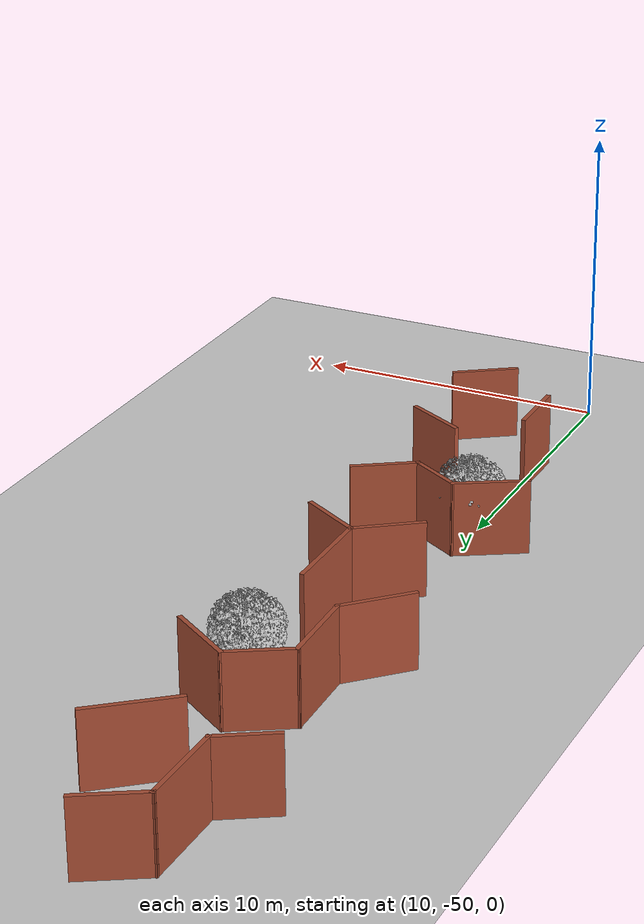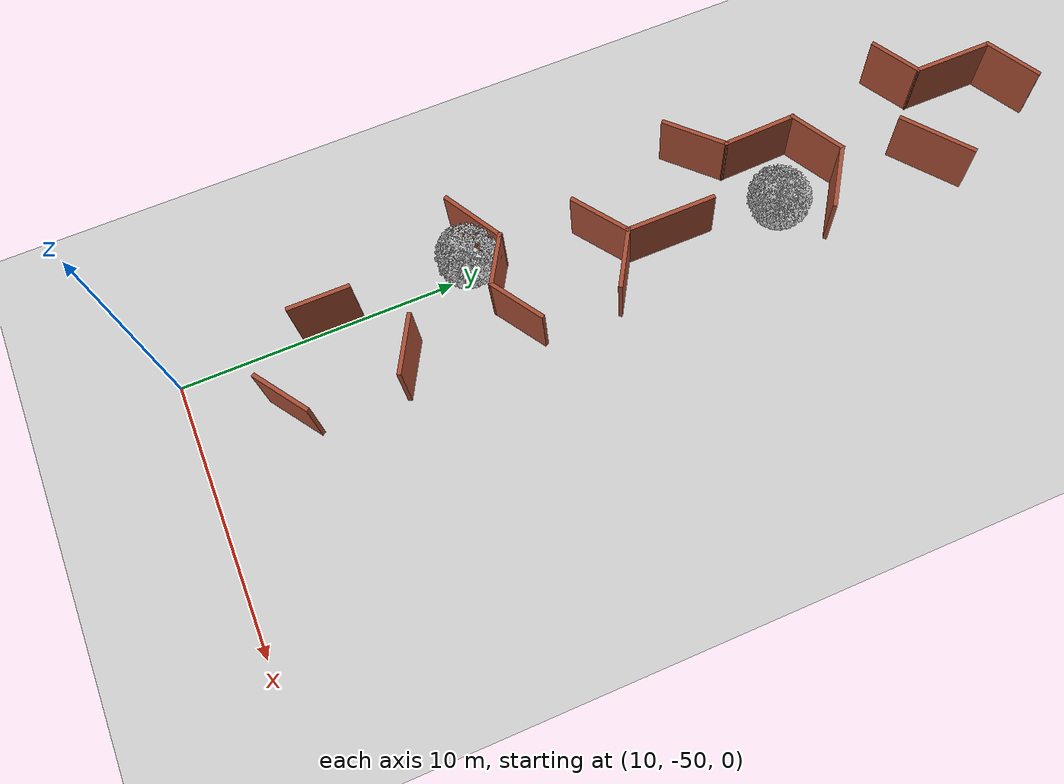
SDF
<sdf version="1.6">
 <world name="default">
  <model name="maze_rect_3">
   <pose>4e-06 -9.9e-05 0 0 -0 1.57001</pose>
   <link name="Wall_461">
    <collision name="Wall_461_Collision">
     <geometry><box><size>2.25 0.15 2.5</size></box></geometry>
     <pose>0 0 1.25 0 -0 0</pose>
    </collision>
    <visual name="Wall_461_Visual">
     <pose>0 0 1.25 0 -0 0</pose>
     <geometry><box><size>2.25 0.15 2.5</size></box></geometry>
     <material>
      <script><uri>file://media/materials/scripts/gazebo.material</uri><name>Gazebo/Bricks</name></script>
      <ambient>1 1 1 1</ambient>
     </material>
     <meta><layer>0</layer></meta>
    </visual>
    <pose>-18.4081 -10.714 0 0 -0 2.0944</pose>
   </link>
   <link name="Wall_462">
    <collision name="Wall_462_Collision">
     <geometry><box><size>3 0.15 2.5</size></box></geometry>
     <pose>0 0 1.25 0 -0 0</pose>
    </collision>
    <visual name="Wall_462_Visual">
     <pose>0 0 1.25 0 -0 0</pose>
     <geometry><box><size>3 0.15 2.5</size></box></geometry>
     <material>
      <script><uri>file://media/materials/scripts/gazebo.material</uri><name>Gazebo/Bricks</name></script>
      <ambient>1 1 1 1</ambient>
     </material>
     <meta><layer>0</layer></meta>
    </visual>
    <pose>-20.3581 -9.80467 0 0 -0 3.14159</pose>
   </link>
   <link name="Wall_463">
    <collision name="Wall_463_Collision">
     <geometry><box><size>2.01531 0.15 2.5</size></box></geometry>
     <pose>0 0 1.25 0 -0 0</pose>
    </collision>
    <visual name="Wall_463_Visual">
     <pose>0 0 1.25 0 -0 0</pose>
     <geometry><box><size>2.01531 0.15 2.5</size></box></geometry>
     <material>
      <script><uri>file://media/materials/scripts/gazebo.material</uri><name>Gazebo/Bricks</name></script>
      <ambient>1 1 1 1</ambient>
     </material>
     <meta><layer>0</layer></meta>
    </visual>
    <pose>-22.2607 -9.0036 0 0 -0 2.10844</pose>
   </link>
   <link name="Wall_529">
    <collision name="Wall_529_Collision">
     <geometry><box><size>2.94143 0.15 2.5</size></box></geometry>
     <pose>0 0 1.25 0 -0 0</pose>
    </collision>
    <visual name="Wall_529_Visual">
     <pose>0 0 1.25 0 -0 0</pose>
     <geometry><box><size>2.94143 0.15 2.5</size></box></geometry>
     <material>
      <script><uri>file://media/materials/scripts/gazebo.material</uri><name>Gazebo/Bricks</name></script>
      <ambient>1 1 1 1</ambient>
     </material>
     <meta><layer>0</layer></meta>
    </visual>
    <pose>-22.3992 -12.4329 0 0 -0 -0.889562</pose>
   </link>
   <link name="Wall_532">
    <collision name="Wall_532_Collision">
     <geometry><box><size>2.43112 0.15 2.5</size></box></geometry>
     <pose>0 0 1.25 0 -0 0</pose>
    </collision>
    <visual name="Wall_532_Visual">
     <pose>0 0 1.25 0 -0 0</pose>
     <geometry><box><size>2.43112 0.15 2.5</size></box></geometry>
     <material>
      <script><uri>file://media/materials/scripts/gazebo.material</uri><name>Gazebo/Bricks</name></script>
      <ambient>1 1 1 1</ambient>
     </material>
     <meta><layer>0</layer></meta>
    </visual>
    <pose>-26.359 -12.5621 0 0 -0 0.998734</pose>
   </link>
   <link name="Wall_533">
    <collision name="Wall_533_Collision">
     <geometry><box><size>2.25 0.15 2.5</size></box></geometry>
     <pose>0 0 1.25 0 -0 0</pose>
    </collision>
    <visual name="Wall_533_Visual">
     <pose>0 0 1.25 0 -0 0</pose>
     <geometry><box><size>2.25 0.15 2.5</size></box></geometry>
     <material>
      <script><uri>file://media/materials/scripts/gazebo.material</uri><name>Gazebo/Bricks</name></script>
      <ambient>1 1 1 1</ambient>
     </material>
     <meta><layer>0</layer></meta>
    </visual>
    <pose>-26.2666 -10.6938 0 0 -0 2.0944</pose>
   </link>
   <link name="Wall_544">
    <collision name="Wall_544_Collision">
     <geometry><box><size>2.5 0.15 2.5</size></box></geometry>
     <pose>0 0 1.25 0 -0 0</pose>
    </collision>
    <visual name="Wall_544_Visual">
     <pose>0 0 1.25 0 -0 0</pose>
     <geometry><box><size>2.5 0.15 2.5</size></box></geometry>
     <material>
      <script><uri>file://media/materials/scripts/gazebo.material</uri><name>Gazebo/Bricks</name></script>
      <ambient>1 1 1 1</ambient>
     </material>
     <meta><layer>0</layer></meta>
    </visual>
    <pose>-30.2444 -9.033 0 0 -0 -0.785398</pose>
   </link>
   <link name="Wall_545">
    <collision name="Wall_545_Collision">
     <geometry><box><size>2.77322 0.15 2.5</size></box></geometry>
     <pose>0 0 1.25 0 -0 0</pose>
    </collision>
    <visual name="Wall_545_Visual">
     <pose>0 0 1.25 0 -0 0</pose>
     <geometry><box><size>2.77322 0.15 2.5</size></box></geometry>
     <material>
      <script><uri>file://media/materials/scripts/gazebo.material</uri><name>Gazebo/Bricks</name></script>
      <ambient>1 1 1 1</ambient>
     </material>
     <meta><layer>0</layer></meta>
    </visual>
    <pose>-28.1026 -9.82414 0 0 -0 0.030278</pose>
   </link>
   <link name="Wall_551">
    <collision name="Wall_551_Collision">
     <geometry><box><size>2.38551 0.15 2.5</size></box></geometry>
     <pose>0 0 1.25 0 -0 0</pose>
    </collision>
    <visual name="Wall_551_Visual">
     <pose>0 0 1.25 0 -0 0</pose>
     <geometry><box><size>2.38551 0.15 2.5</size></box></geometry>
     <material>
      <script><uri>file://media/materials/scripts/gazebo.material</uri><name>Gazebo/Bricks</name></script>
      <ambient>1 1 1 1</ambient>
     </material>
     <meta><layer>0</layer></meta>
    </visual>
    <pose>-34.5618 -10.7081 0 0 -0 -0.950197</pose>
   </link>
   <link name="Wall_552">
    <collision name="Wall_552_Collision">
     <geometry><box><size>2.25 0.15 2.5</size></box></geometry>
     <pose>0 0 1.25 0 -0 0</pose>
    </collision>
    <visual name="Wall_552_Visual">
     <pose>0 0 1.25 0 -0 0</pose>
     <geometry><box><size>2.25 0.15 2.5</size></box></geometry>
     <material>
      <script><uri>file://media/materials/scripts/gazebo.material</uri><name>Gazebo/Bricks</name></script>
      <ambient>1 1 1 1</ambient>
     </material>
     <meta><layer>0</layer></meta>
    </visual>
    <pose>-34.4368 -12.5267 0 0 -0 -2.0944</pose>
   </link>
   <link name="Wall_557">
    <collision name="Wall_557_Collision">
     <geometry><box><size>3.33697 0.15 2.5</size></box></geometry>
     <pose>0 0 1.25 0 -0 0</pose>
    </collision>
    <visual name="Wall_557_Visual">
     <pose>0 0 1.25 0 -0 0</pose>
     <geometry><box><size>3.33697 0.15 2.5</size></box></geometry>
     <material>
      <script><uri>file://media/materials/scripts/gazebo.material</uri><name>Gazebo/Bricks</name></script>
      <ambient>1 1 1 1</ambient>
     </material>
     <meta><layer>0</layer></meta>
    </visual>
    <pose>-32.3183 -11.6124 0 0 -0 -3.13847</pose>
   </link>
   <link name="Wall_560">
    <collision name="Wall_560_Collision">
     <geometry><box><size>2.25 0.15 2.5</size></box></geometry>
     <pose>0 0 1.25 0 -0 0</pose>
    </collision>
    <visual name="Wall_560_Visual">
     <pose>0 0 1.25 0 -0 0</pose>
     <geometry><box><size>2.25 0.15 2.5</size></box></geometry>
     <material>
      <script><uri>file://media/materials/scripts/gazebo.material</uri><name>Gazebo/Bricks</name></script>
      <ambient>1 1 1 1</ambient>
     </material>
     <meta><layer>0</layer></meta>
    </visual>
    <pose>-44.4273 -9.88536 0 0 -0 0</pose>
   </link>
   <link name="Wall_563">
    <collision name="Wall_563_Collision">
     <geometry><box><size>2.5 0.15 2.5</size></box></geometry>
     <pose>0 0 1.25 0 -0 0</pose>
    </collision>
    <visual name="Wall_563_Visual">
     <pose>0 0 1.25 0 -0 0</pose>
     <geometry><box><size>2.5 0.15 2.5</size></box></geometry>
     <material>
      <script><uri>file://media/materials/scripts/gazebo.material</uri><name>Gazebo/Bricks</name></script>
      <ambient>1 1 1 1</ambient>
     </material>
     <meta><layer>0</layer></meta>
    </visual>
    <pose>-38.6014 -9.06446 0 0 -0 -1.0472</pose>
   </link>
   <link name="Wall_564">
    <collision name="Wall_564_Collision">
     <geometry><box><size>2 0.15 2.5</size></box></geometry>
     <pose>0 0 1.25 0 -0 0</pose>
    </collision>
    <visual name="Wall_564_Visual">
     <pose>0 0 1.25 0 -0 0</pose>
     <geometry><box><size>2 0.15 2.5</size></box></geometry>
     <material>
      <script><uri>file://media/materials/scripts/gazebo.material</uri><name>Gazebo/Bricks</name></script>
      <ambient>1 1 1 1</ambient>
     </material>
     <meta><layer>0</layer></meta>
    </visual>
    <pose>-38.4764 -10.8831 0 0 -0 -2.0944</pose>
   </link>
   <link name="Wall_565">
    <collision name="Wall_565_Collision">
     <geometry><box><size>2.23307 0.15 2.5</size></box></geometry>
     <pose>0 0 1.25 0 -0 0</pose>
    </collision>
    <visual name="Wall_565_Visual">
     <pose>0 0 1.25 0 -0 0</pose>
     <geometry><box><size>2.23307 0.15 2.5</size></box></geometry>
     <material>
      <script><uri>file://media/materials/scripts/gazebo.material</uri><name>Gazebo/Bricks</name></script>
      <ambient>1 1 1 1</ambient>
     </material>
     <meta><layer>0</layer></meta>
    </visual>
    <pose>-38.3753 -12.5601 0 0 -0 -0.999112</pose>
   </link>
   <link name="Wall_585">
    <collision name="Wall_585_Collision">
     <geometry><box><size>2.21874 0.15 2.5</size></box></geometry>
     <pose>0 0 1.25 0 -0 0</pose>
    </collision>
    <visual name="Wall_585_Visual">
     <pose>0 0 1.25 0 -0 0</pose>
     <geometry><box><size>2.21874 0.15 2.5</size></box></geometry>
     <material>
      <script><uri>file://media/materials/scripts/gazebo.material</uri><name>Gazebo/Bricks</name></script>
      <ambient>1 1 1 1</ambient>
     </material>
     <meta><layer>0</layer></meta>
    </visual>
    <pose>-42.3367 -12.5799 0 0 -0 -2.0658</pose>
   </link>
   <link name="Wall_587">
    <collision name="Wall_587_Collision">
     <geometry><box><size>2.27296 0.15 2.5</size></box></geometry>
     <pose>0 0 1.25 0 -0 0</pose>
    </collision>
    <visual name="Wall_587_Visual">
     <pose>0 0 1.25 0 -0 0</pose>
     <geometry><box><size>2.27296 0.15 2.5</size></box></geometry>
     <material>
      <script><uri>file://media/materials/scripts/gazebo.material</uri><name>Gazebo/Bricks</name></script>
      <ambient>1 1 1 1</ambient>
     </material>
     <meta><layer>0</layer></meta>
    </visual>
    <pose>-46.5948 -12.6124 0 0 -0 2.17093</pose>
   </link>
   <static>1</static>
  </model>
  <model name="tree2_17">
   <link name="link_0">
    <inertial>
     <mass>1</mass>
     <inertia>
      <ixx>0.166667</ixx>
      <ixy>0</ixy>
      <ixz>0</ixz>
      <iyy>0.166667</iyy>
      <iyz>0</iyz>
      <izz>0.166667</izz>
     </inertia>
    </inertial>
    <pose>-0 -0 0 1.58863 -0.000294 0</pose>
    <visual name="visual">
     <geometry><mesh><uri>model://tree2/Tree.obj</uri><scale>1 1 1</scale></mesh></geometry>
    </visual>
    <collision name="collision">
     <geometry><mesh><uri>model://tree2/Tree.obj</uri><scale>1 1 1</scale></mesh></geometry>
     <surface>
      <friction>
       <ode><mu>1</mu><mu2>1</mu2><fdir1>0 0 0</fdir1><slip1>0</slip1><slip2>0</slip2></ode>
       <torsional>
        <coefficient>1</coefficient>
        <patch_radius>0</patch_radius>
        <surface_radius>0</surface_radius>
        <use_patch_radius>1</use_patch_radius>
        <ode><slip>0</slip></ode>
       </torsional>
      </friction>
      <bounce><restitution_coefficient>0</restitution_coefficient><threshold>1e+06</threshold></bounce>
      <contact>
       <collide_without_contact>0</collide_without_contact>
       <collide_without_contact_bitmask>1</collide_without_contact_bitmask>
       <collide_bitmask>1</collide_bitmask>
       <ode>
        <soft_cfm>0</soft_cfm>
        <soft_erp>0.2</soft_erp>
        <kp>1e+13</kp>
        <kd>1</kd>
        <max_vel>0.01</max_vel>
        <min_depth>0</min_depth>
       </ode>
       <bullet>
        <split_impulse>1</split_impulse>
        <split_impulse_penetration_threshold>-0.01</split_impulse_penetration_threshold>
        <soft_cfm>0</soft_cfm>
        <soft_erp>0.2</soft_erp>
        <kp>1e+13</kp>
        <kd>1</kd>
       </bullet>
      </contact>
     </surface>
    </collision>
   </link>
   <static>1</static>
   <pose>9.99148 -39.2065 0 0 -0 0</pose>
  </model>
  <model name="tree2_19">
   <link name="link_0">
    <inertial>
     <mass>1</mass>
     <inertia>
      <ixx>0.166667</ixx>
      <ixy>0</ixy>
      <ixz>0</ixz>
      <iyy>0.166667</iyy>
      <iyz>0</iyz>
      <izz>0.166667</izz>
     </inertia>
    </inertial>
    <pose>-0 -0 0 1.58863 -0.000294 0</pose>
    <visual name="visual">
     <geometry><mesh><uri>model://tree2/Tree.obj</uri><scale>1 1 1</scale></mesh></geometry>
    </visual>
    <collision name="collision">
     <geometry><mesh><uri>model://tree2/Tree.obj</uri><scale>1 1 1</scale></mesh></geometry>
     <surface>
      <friction>
       <ode><mu>1</mu><mu2>1</mu2><fdir1>0 0 0</fdir1><slip1>0</slip1><slip2>0</slip2></ode>
       <torsional>
        <coefficient>1</coefficient>
        <patch_radius>0</patch_radius>
        <surface_radius>0</surface_radius>
        <use_patch_radius>1</use_patch_radius>
        <ode><slip>0</slip></ode>
       </torsional>
      </friction>
      <bounce><restitution_coefficient>0</restitution_coefficient><threshold>1e+06</threshold></bounce>
      <contact>
       <collide_without_contact>0</collide_without_contact>
       <collide_without_contact_bitmask>1</collide_without_contact_bitmask>
       <collide_bitmask>1</collide_bitmask>
       <ode>
        <soft_cfm>0</soft_cfm>
        <soft_erp>0.2</soft_erp>
        <kp>1e+13</kp>
        <kd>1</kd>
        <max_vel>0.01</max_vel>
        <min_depth>0</min_depth>
       </ode>
       <bullet>
        <split_impulse>1</split_impulse>
        <split_impulse_penetration_threshold>-0.01</split_impulse_penetration_threshold>
        <soft_cfm>0</soft_cfm>
        <soft_erp>0.2</soft_erp>
        <kp>1e+13</kp>
        <kd>1</kd>
       </bullet>
      </contact>
     </surface>
    </collision>
   </link>
   <static>1</static>
   <pose>12.1608 -28.3661 0 0 -0 0</pose>
  </model>
  <model name="ground_plane">
   <static>1</static>
   <link name="link">
    <collision name="collision">
     <geometry><plane><normal>0 0 1</normal><size>100 100</size></plane></geometry>
     <surface>
      <contact><collide_bitmask>65535</collide_bitmask></contact>
      <friction><ode><mu>100</mu><mu2>50</mu2></ode></friction>
     </surface>
    </collision>
    <visual name="visual">
     <cast_shadows>0</cast_shadows>
     <geometry><plane><normal>0 0 1</normal><size>100 100</size></plane></geometry>
     <material>
      <script><uri>file://media/materials/scripts/gazebo.material</uri><name>Gazebo/Grey</name></script>
     </material>
    </visual>
   </link>
   <pose>9.31394 52.073 0 0 -0 0</pose>
  </model>
 </world>
</sdf>
